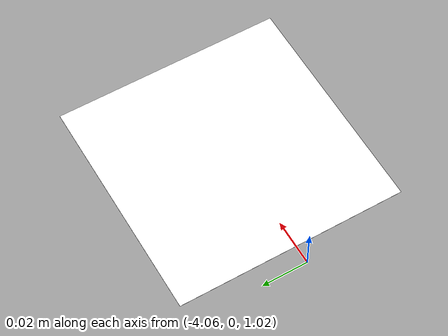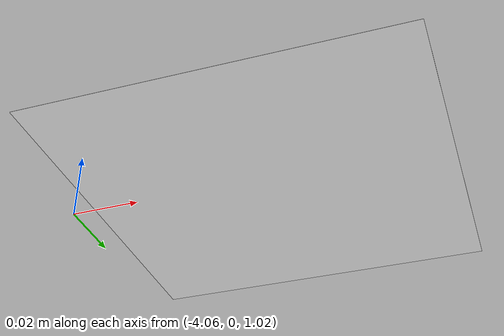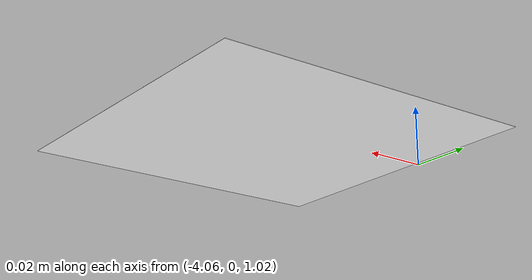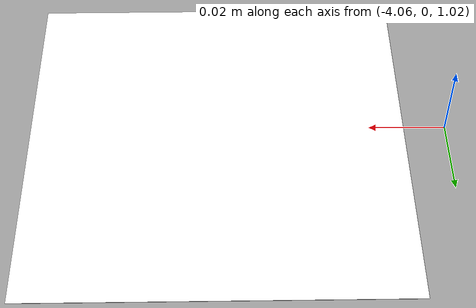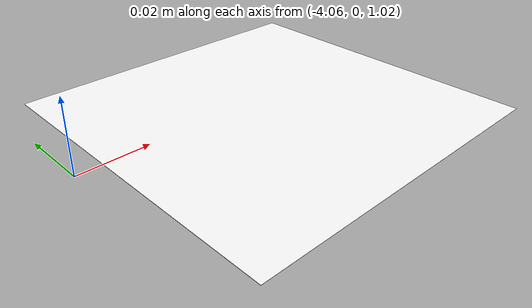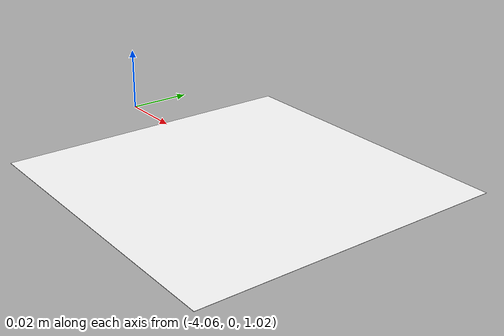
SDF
<?xml version="1.0" encoding="UTF-8"?>
<sdf version='1.9'>
  <model name='arucotag_302'>
    <static>true</static>
    <pose>-4 0 1.016 0 0 0</pose>
    <link name='base'>
      <visual name='base_visual'>
        <geometry>
          <plane>
            <normal>0 0 1</normal>
            <size>0.1 0.1</size>
          </plane>
        </geometry>
        <material>
          <diffuse>1 1 1 1</diffuse>
          <specular>0.4 0.4 0.4 1</specular>
          <pbr>
            <metal>
              <albedo_map>model://arucotag_302/302.png</albedo_map>
            </metal>
          </pbr>
        </material>
      </visual>
    </link>
  </model>
</sdf>
